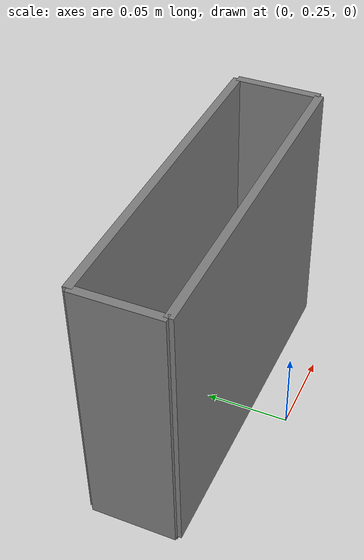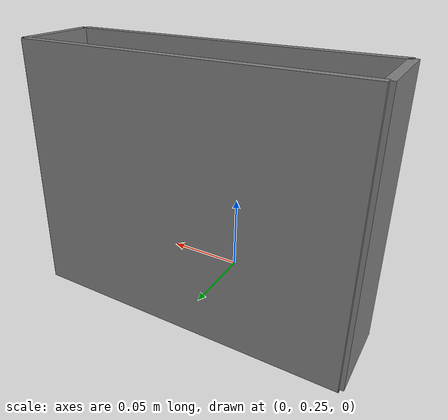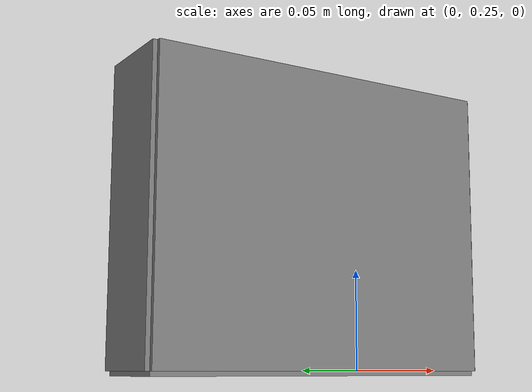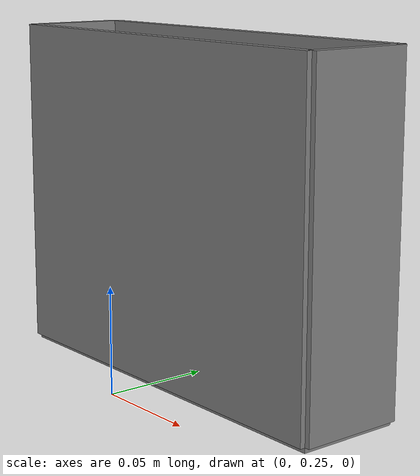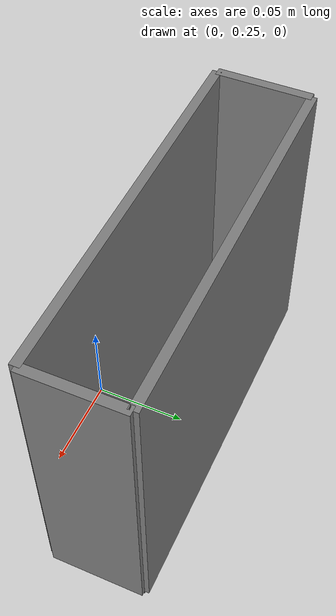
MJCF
<mujoco model="robot">
  <compiler angle="radian" autolimits="true" />
  <default />
  <worldbody>
    <body name="letter_holder" pos="0.0 0.3 00">
      <geom size="0.1 0.025 0.0025" type="box" />
      <geom size="0.1 0.0025 0.08" pos="0 -0.025 0.08" type="box" />
      <geom size="0.1 0.0025 0.08" pos="0 0.025 0.08" type="box" />
      <geom size="0.0025 0.025 0.08" pos="0.1 0 0.08" type="box" />
      <geom size="0.0025 0.025 0.08" pos="-0.1 0 0.08" type="box" />
    </body>
  </worldbody>
</mujoco>
